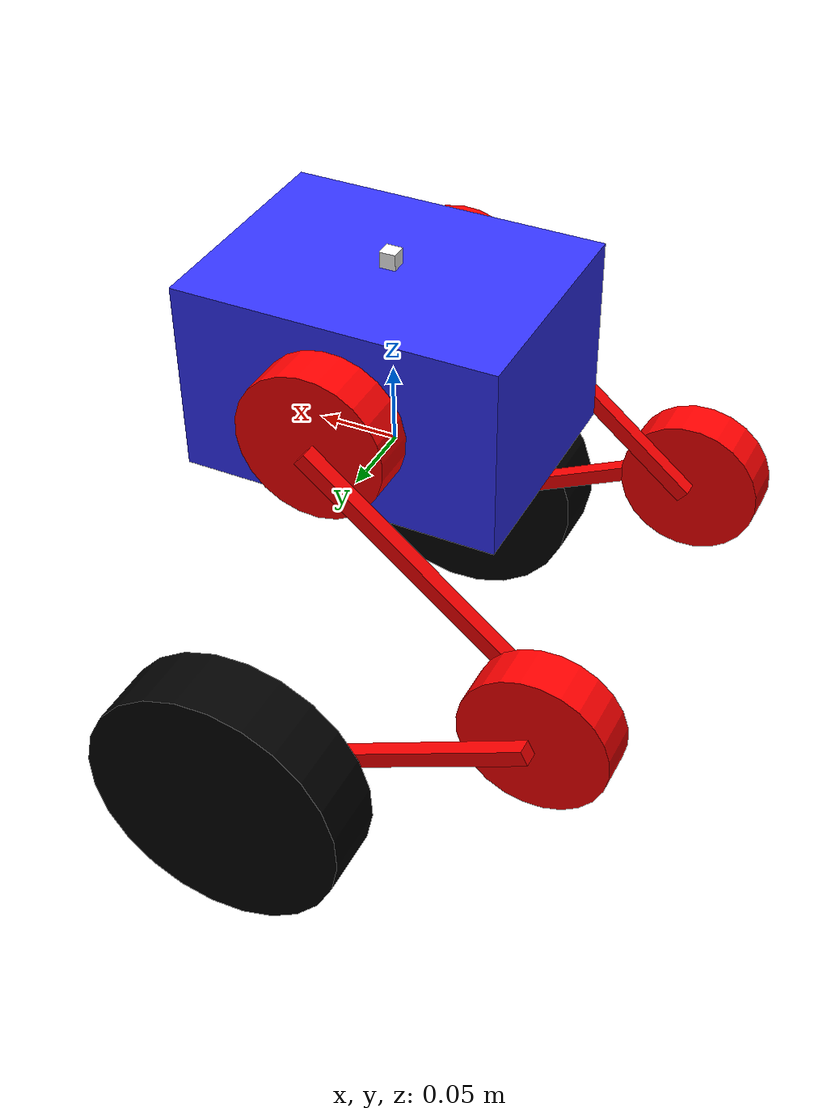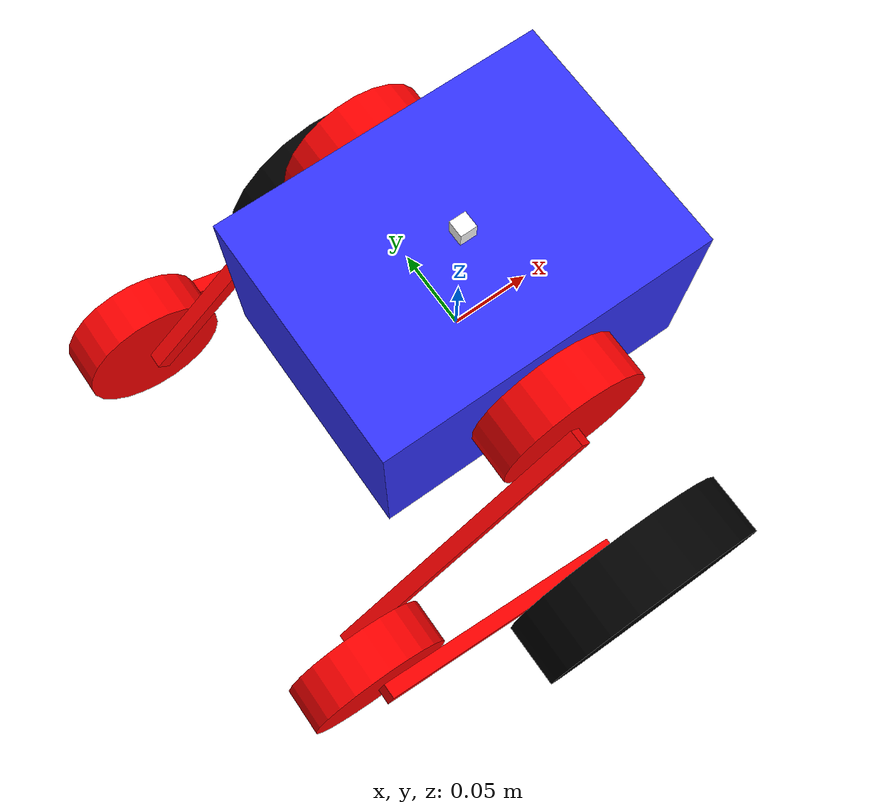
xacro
<?xml version="1.0"?>
<robot xmlns:xacro="http://www.ros.org/wiki/xacro" name="werdna">

    <xacro:include filename="consts.xacro"/>
    <xacro:include filename='inertial_macros.xacro'/>

    <!-- *********** base link *********** -->
    <link name="base_link"></link>

    <!-- CHASSIS -->

    <link name="chassis_link">
        <xacro:inertial_box mass="${chassis_mass}" x="${chassis_length}" y="${chassis_width}" z="${chassis_height}">
            <origin xyz="0 0 0" rpy="0 0 0"/>
        </xacro:inertial_box>
        <visual>
            <origin xyz="0.0 0.0 0.0" rpy="0.0 0.0 0.0"/>
            <geometry>
                <box size="${chassis_length} ${chassis_width} ${chassis_height}"/>
            </geometry>
            <material name="blue"/>
        </visual>
        <collision>
            <origin xyz="0.0 0.0 0.0" rpy="0.0 0.0 0.0"/>
            <geometry>
                <box size="${chassis_length} ${chassis_width} ${chassis_height}"/>
            </geometry>
            <material name="blue"/>
        </collision>
    </link>

    <!-- chassis_joint -->
    <joint name="chassis_joint" type="fixed">
        <origin xyz="0.0 0.0 ${chassis_height/2}" rpy="0.0 0.0 0.0"/>
        <parent link="base_link"/>
        <child link="chassis_link"/>
    </joint>

    <!-- imu -->
    <link name="imu_link">
        <xacro:inertial_box mass="${imu_mass}" x="${imu_length}" y="${imu_width}" z="${imu_height}">
            <origin xyz="0 0 0" rpy="0 0 0"/>
        </xacro:inertial_box>
        <visual>
            <origin xyz="0.0 0.0 0.0" rpy="0.0 0.0 0.0"/>
            <geometry>
                <box size="${imu_length} ${imu_width} ${imu_height}"/>
            </geometry>
            <material name="white"/>
        </visual>
        <collision>
            <origin xyz="0.0 0.0 0.0" rpy="0.0 0.0 0.0"/>
            <geometry>
                <box size="${imu_length} ${imu_width} ${imu_height}"/>
            </geometry>
            <material name="white"/>
        </collision>
    </link>

    <!-- imu joint -->
    <joint name="imu_joint" type="fixed">
        <origin xyz="0.0 0.0 ${chassis_height/2 + imu_height/2}" rpy="0.0 0.0 0.0"/>
        <parent link="chassis_link"/>
        <child link="imu_link"/>
    </joint>

    <!-- LEFT HIP MOTOR -->
    <link name="left_hip_motor_link">
        <visual>
            <origin xyz="0 0 0" rpy="0 0 0"/>
            <geometry>
                <cylinder radius="${motor_radius}" length="${motor_thickness}"/>
            </geometry>
            <material name="red"/>
        </visual>
        <collision>
            <origin xyz="0 0 0" rpy="0 0 0"/>
            <geometry>
                <cylinder radius="${motor_radius}" length="${motor_thickness}"/>
            </geometry>
            <material name="red"/>
        </collision>
        <xacro:inertial_cylinder mass="${motor_mass}" length="${motor_thickness}" radius="${motor_radius}">
            <origin xyz="0 0 0" rpy="0 0 0"/>
        </xacro:inertial_cylinder>
    </link>

    <joint name="left_hip_motor_joint" type="revolute">
        <origin xyz="0.0 ${chassis_width/2 + motor_thickness/2} 0.0" rpy="${pi/2} -0.6897975409348593 0.0"/>
        <parent link="chassis_link"/>
        <child link="left_hip_motor_link"/>
        <axis xyz="0.0 0.0 1.0"/>
        <limit lower="${low_limit}" upper="${high_limit}" velocity="${velocity}" effort="${effort}"/>
    </joint>

    <!-- LEFT HIP ROD -->
    <link name="left_hip_link">
        <visual>
            <origin xyz="-${rod_height/2} 0 0" rpy="0 ${pi/2} 0"/>
            <geometry>
                <box size="${rod_length} ${rod_width} ${rod_height}"/>
            </geometry>
            <material name="red"/>
        </visual>
        <collision>
            <origin xyz="-${rod_height/2} 0 0" rpy="0 ${pi/2} 0"/>
            <geometry>
                <box size="${rod_length} ${rod_width} ${rod_height}"/>
            </geometry>
            <material name="red"/>
        </collision>
        <xacro:inertial_box mass="${rod_mass}" x="${rod_length}" y="${rod_width}" z="${rod_height}">
            <origin xyz="-${rod_height/2} 0 0" rpy="0 ${pi/2} 0"/>
        </xacro:inertial_box>
    </link>

    <joint name="left_hip_joint" type="fixed">
        <origin xyz="0.0 0.0 -${motor_thickness/2 + rod_length/2}" rpy="0.0 0.0 0.0"/>
        <parent link="left_hip_motor_link"/>
        <child link="left_hip_link"/>
    </joint>

    <!-- LEFT KNEE MOTOR -->
    <link name="left_knee_motor_link">
        <visual>
            <origin xyz="0 0 0" rpy="0 0 0"/>
            <geometry>
                <cylinder radius="${motor_radius}" length="${motor_thickness}"/>
            </geometry>
            <material name="red"/>
        </visual>
        <collision>
            <origin xyz="0 0 0" rpy="0 0 0"/>
            <geometry>
                <cylinder radius="${motor_radius}" length="${motor_thickness}"/>
            </geometry>
            <material name="red"/>
        </collision>
        <xacro:inertial_cylinder mass="${motor_mass}" length="${motor_thickness}" radius="${motor_radius}">
            <origin xyz="0 0 0" rpy="0 0 0"/>
        </xacro:inertial_cylinder>
    </link>

    <joint name="left_knee_motor_joint" type="revolute">
        <origin xyz="-${rod_height} 0 -${motor_thickness/2 + rod_length/2}" rpy="0.0 0 -1.1336790410021163"/>
        <parent link="left_hip_link"/>
        <child link="left_knee_motor_link"/>
        <axis xyz="0.0 0.0 -1.0"/>
        <limit lower="${low_limit}" upper="${high_limit}" velocity="${velocity}" effort="${effort}"/>
    </joint>

    <!-- LEFT KNEE ROD -->
    <link name="left_knee_link">
        <visual>
            <origin xyz="0 0 ${rod_height/2}" rpy="0 0 0"/>
            <geometry>
                <box size="${rod_length} ${rod_width} ${rod_height}"/>
            </geometry>
            <material name="red"/>
        </visual>
        <collision>
            <origin xyz="0 0 ${rod_height/2}" rpy="0 0 0"/>
            <geometry>
                <box size="${rod_length} ${rod_width} ${rod_height}"/>
            </geometry>
            <material name="red"/>
        </collision>
        <xacro:inertial_box mass="${rod_mass}" x="${rod_length}" y="${rod_width}" z="${rod_height}">
            <origin xyz="0 0 ${rod_height/2}" rpy="0 0 0"/>
        </xacro:inertial_box>
    </link>

    <joint name="left_knee_joint" type="fixed">
        <origin xyz="0 0 -${motor_thickness/2 + rod_length/2}" rpy="0.0 ${pi/2} 0.0"/>
        <parent link="left_knee_motor_link"/>
        <child link="left_knee_link"/>
    </joint>

    <!-- LEFT WHEEL -->
    <link name="left_wheel">
        <visual>
            <origin xyz="0 0 0" rpy="0 0 0"/>
            <geometry>
                <cylinder radius="${wheel_radius}" length="${wheel_length}"/>
            </geometry>
            <material name="black"/>
        </visual>
        <collision>
            <origin xyz="0 0 0" rpy="0 0 0"/>
            <geometry>
                <cylinder radius="${wheel_radius}" length="${wheel_length}"/>
            </geometry>
        </collision>
        <xacro:inertial_cylinder mass="${wheel_mass}" length="${wheel_length}" radius="${wheel_radius}">
            <origin xyz="0 0 0" rpy="0 0 0"/>
        </xacro:inertial_cylinder>
    </link>

    <joint name="left_wheel_joint" type="continuous">
      <origin xyz="${rod_length/2 + wheel_length/2} 0 ${rod_height}" rpy="0 ${pi/2} 0"/>
      <parent link="left_knee_link"/>
      <child link="left_wheel"/>
      <axis xyz="0.0 0.0 1.0"/>
    </joint>

    <!-- RIGHT HIP MOTOR -->
    <link name="right_hip_motor_link">
        <visual>
            <origin xyz="0 0 0" rpy="0 0 0"/>
            <geometry>
                <cylinder radius="${motor_radius}" length="${motor_thickness}"/>
            </geometry>
            <material name="red"/>
        </visual>
        <collision>
            <origin xyz="0 0 0" rpy="0 0 0"/>
            <geometry>
                <cylinder radius="${motor_radius}" length="${motor_thickness}"/>
            </geometry>
            <material name="red"/>
        </collision>
        <xacro:inertial_cylinder mass="${motor_mass}" length="${motor_thickness}" radius="${motor_radius}">
            <origin xyz="0 0 0" rpy="0 0 0"/>
        </xacro:inertial_cylinder>
    </link>

    <joint name="right_hip_motor_joint" type="revolute">
        <origin xyz="0.0 -${chassis_width/2 + motor_thickness/2} 0.0" rpy="${pi/2} -0.6897975409348593 0.0"/>
        <parent link="chassis_link"/>
        <child link="right_hip_motor_link"/>
        <axis xyz="0.0 0.0 1.0"/>
        <limit lower="${low_limit}" upper="${high_limit}" velocity="${velocity}" effort="${effort}"/>
    </joint>

    <!-- RIGHT HIP LINK -->
    <link name="right_hip_link">
        <visual>
            <origin xyz="-${rod_height/2} 0 0" rpy="0 ${pi/2} 0"/>
            <geometry>
                <box size="${rod_length} ${rod_width} ${rod_height}"/>
            </geometry>
            <material name="red"/>
        </visual>
        <collision>
            <origin xyz="-${rod_height/2} 0 0" rpy="0 ${pi/2} 0"/>
            <geometry>
                <box size="${rod_length} ${rod_width} ${rod_height}"/>
            </geometry>
            <material name="red"/>
        </collision>
        <xacro:inertial_box mass="${rod_mass}" x="${rod_length}" y="${rod_width}" z="${rod_height}">
            <origin xyz="-${rod_height/2} 0 0" rpy="0 ${pi/2} 0"/>
        </xacro:inertial_box>
    </link>

    <joint name="right_hip_joint" type="fixed">
        <origin xyz="0.0 0.0 ${motor_thickness/2 + rod_length/2}" rpy="0.0 0.0 0.0"/>
        <parent link="right_hip_motor_link"/>
        <child link="right_hip_link"/>
    </joint>

    <!-- RIGHT KNEE MOTOR -->
    <link name="right_knee_motor_link">
        <visual>
            <origin xyz="0 0 0" rpy="0 0 0"/>
            <geometry>
                <cylinder radius="${motor_radius}" length="${motor_thickness}"/>
            </geometry>
            <material name="red"/>
        </visual>
        <collision>
            <origin xyz="0 0 0" rpy="0 0 0"/>
            <geometry>
                <cylinder radius="${motor_radius}" length="${motor_thickness}"/>
            </geometry>
            <material name="red"/>
        </collision>
        <xacro:inertial_cylinder mass="${motor_mass}" length="${motor_thickness}" radius="${motor_radius}">
            <origin xyz="0 0 0" rpy="0 0 0"/>
        </xacro:inertial_cylinder>
    </link>

    <joint name="right_knee_motor_joint" type="revolute">
        <origin xyz="-${rod_height} 0 ${motor_thickness/2 + rod_length/2}" rpy="0.0 0 -1.1336790410021163"/>
        <parent link="right_hip_link"/>
        <child link="right_knee_motor_link"/>
        <axis xyz="0.0 0.0 -1.0"/>
        <limit lower="${low_limit}" upper="${high_limit}" velocity="${velocity}" effort="${effort}"/>
    </joint>

    <!-- RIGHT KNEE ROD -->
    <link name="right_knee_link">
        <visual>
            <origin xyz="0 0 ${rod_height/2}" rpy="0 0 0"/>
            <geometry>
                <box size="${rod_length} ${rod_width} ${rod_height}"/>
            </geometry>
            <material name="red"/>
        </visual>
        <collision>
            <origin xyz="0 0 ${rod_height/2}" rpy="0 0 0"/>
            <geometry>
                <box size="${rod_length} ${rod_width} ${rod_height}"/>
            </geometry>
            <material name="red"/>
        </collision>
        <xacro:inertial_box mass="${rod_mass}" x="${rod_length}" y="${rod_width}" z="${rod_height}">
            <origin xyz="0 0 ${rod_height/2}" rpy="0 0 0"/>
        </xacro:inertial_box>
    </link>

    <joint name="right_knee_joint" type="fixed">
        <origin xyz="0 0 ${motor_thickness/2 + rod_length/2}" rpy="0.0 ${pi/2} 0.0"/>
        <parent link="right_knee_motor_link"/>
        <child link="right_knee_link"/>
    </joint>

    <!-- RIGHT WHEEL -->
    <link name="right_wheel">
        <visual>
            <origin xyz="0 0 0" rpy="0 0 0"/>
            <geometry>
                <cylinder radius="${wheel_radius}" length="${wheel_length}"/>
            </geometry>
            <material name="black"/>
        </visual>
        <collision>
            <origin xyz="0 0 0" rpy="0 0 0"/>
            <geometry>
                <cylinder radius="${wheel_radius}" length="${wheel_length}"/>
            </geometry>
        </collision>
        <xacro:inertial_cylinder mass="${wheel_mass}" length="${wheel_length}" radius="${wheel_radius}">
            <origin xyz="0 0 0" rpy="0 0 0"/>
        </xacro:inertial_cylinder>
    </link>

    <joint name="right_wheel_joint" type="continuous">
      <origin xyz="-${rod_length/2 + wheel_length/2} 0 ${rod_height}" rpy="0 ${pi/2} 0"/>
      <parent link="right_knee_link"/>
      <child link="right_wheel"/>
      <axis xyz="0.0 0.0 1.0"/>
    </joint>

</robot>

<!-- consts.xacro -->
<robot xmlns:xacro="http://www.ros.org/wiki/xacro">

    <!-- joint's limits -->
    <xacro:property name="high_limit" value="3.142"/>
    <xacro:property name="low_limit" value="-3.142"/>
    <xacro:property name="velocity" value="10.0"/>
    <xacro:property name="effort" value="10.0"/>

    <!-- joint's dynamics -->
    <xacro:property name="use_dynamics" value="true"/>
    <xacro:macro name="hip_joint_dynamics">
        <dynamics damping='0.1' friction="1000"/>
    </xacro:macro>
    <xacro:macro name="knee_joint_dynamics">
        <dynamics damping='1.0' friction="100"/>
    </xacro:macro>

    <xacro:property name="wheel_radius" value="0.0855"/>
    <xacro:property name="wheel_lenght" value="0.045"/>

    <material name="white">
        <color rgba="1 1 1 1" />
    </material>

    <material name="orange">
        <color rgba="1 0.3 0.1 1"/>
    </material>

    <material name="blue">
        <color rgba="0.2 0.2 1 1"/>
    </material>

    <material name="black">
        <color rgba="0 0 0 1"/>
    </material>

    <material name="red">
        <color rgba="1 0 0 1"/>
    </material>

    <xacro:property name="wheel_radius" value="0.0855"/>
    <xacro:property name="wheel_length" value="0.045"/>

    <xacro:property name="motor_radius" value="0.046"/>
    <xacro:property name="motor_thickness" value="0.0285"/>

    <!-- Width, length, height = x,y,z -->
    <xacro:property name="chassis_length" value="0.2"/>
    <xacro:property name="chassis_width" value="0.15"/>
    <xacro:property name="chassis_height" value="0.12"/>

    <xacro:property name="imu_length" value="0.01"/>
    <xacro:property name="imu_width" value="0.01"/>
    <xacro:property name="imu_height" value="0.01"/>

    <xacro:property name="rod_length" value="0.01"/>
    <xacro:property name="rod_width" value="0.01"/>
    <xacro:property name="rod_height" value="0.2"/>

    <xacro:property name="chassis_mass" value="3.0"/>
    <xacro:property name="rod_mass" value="0.2"/>
    <xacro:property name="wheel_mass" value="2.2"/>
    <xacro:property name="imu_mass" value="0.01"/>
    <xacro:property name="motor_mass" value="0.336"/>

</robot>
